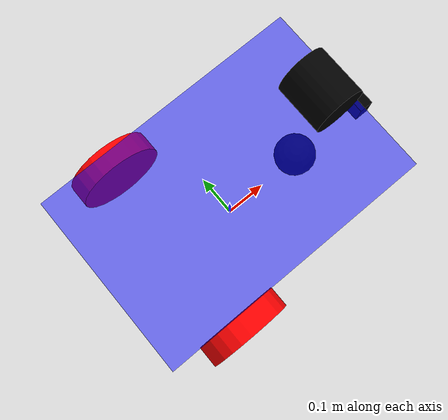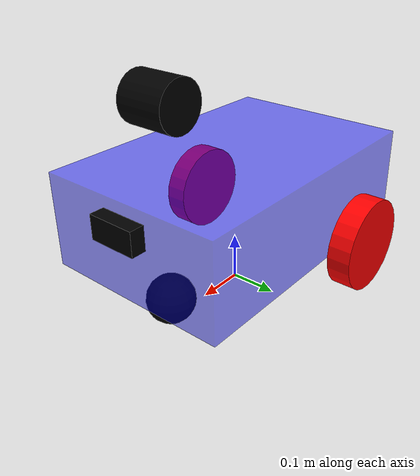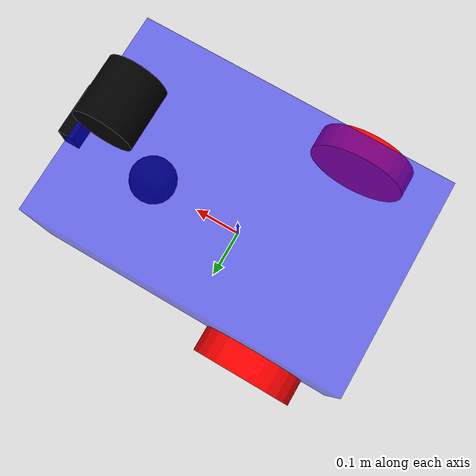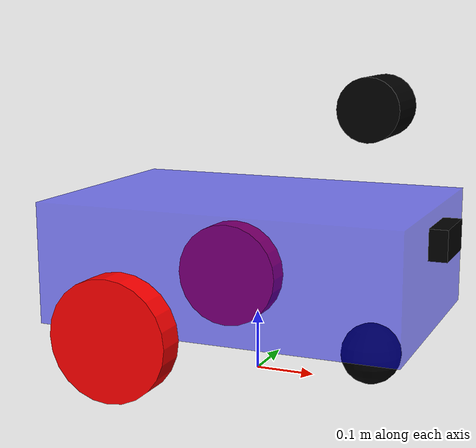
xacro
<?xml version="1.0"?>
<robot name="mobile_robot" xmlns:xacro="http://www.ros.org/wiki/xacro">

    <xacro:arg name="sim_mode" default="true"/>
    <xacro:arg name="use_ros2_control" default="true"/>

    <xacro:include filename="inertial_macros.xacro" />
    <xacro:include filename="robot_core.xacro" />
    <xacro:include filename="camera.xacro" />
    <xacro:include filename="lidar.xacro" />

    <xacro:if value="$(arg use_ros2_control)">
        <xacro:include filename="ros2_control.xacro" />
    </xacro:if>

    <xacro:unless value="$(arg use_ros2_control)">
        <xacro:include filename="gazebo_control.xacro" />
    </xacro:unless>

</robot>

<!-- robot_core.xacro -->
<robot xmlns:xacro="http://www.ros.org/wiki/xacro">

    <material name="blue">
        <color rgba="0 0 1 0.5"/>
    </material>

    <material name="red">
        <color rgba="1 0 0 1"/>
    </material>

    <material name="black">
        <color rgba="0 0 0 1"/>
    </material>

    <link name="base_footprint"/>

    <joint name="base_footprint_to_base_link_joint" type="fixed">
        <parent link="base_footprint"/>
        <child link="base_link"/>
        <origin xyz="0 0 0.1" rpy="0 0 0"/>
    </joint>

    <link name="base_link">
        <visual>
            <geometry>
                <box size="0.6 0.4 0.2"/>
            </geometry>
            <origin xyz="0 0 0.1" rpy="0 0 0"/>
            <material name="blue"/>
        </visual>
        <collision>
            <geometry>
                <box size="0.6 0.4 0.2"/>
            </geometry>
            <origin xyz="0 0 0.1" rpy="0 0 0"/>
        </collision>
        <inertial>
            <origin xyz="0 0 0.1" rpy="0 0 0"/>
            <mass value="2.0"/>
            <inertia ixx="0.033333" ixy="0.0" ixz="0.0"
                     iyy="0.066667" iyz="0.0"
                     izz="0.086667"/>
        </inertial>
    </link>

    <gazebo reference="base_link">
        <material>Gazebo/Blue</material>
    </gazebo>

    <joint name="base_right_wheel_joint" type="continuous">
        <parent link="base_link"/>
        <child link="right_wheel_link"/>
        <origin xyz="-0.15 -0.225 0" rpy="0 0 0"/>
        <axis xyz="0 1 0"/>

        <limit effort="1000.0" velocity="100.0"/>
        <dynamics damping="0.1" friction="0.1"/>
    </joint>

    <link name="right_wheel_link">
        <visual>
            <geometry>
                <cylinder radius="0.1" length="0.05"/>
            </geometry>
            <origin xyz="0 0 0" rpy="1.57 0 0"/>
            <material name="red"/>
        </visual>
        <collision>
            <geometry>
                <cylinder radius="0.1" length="0.05"/>
            </geometry>
            <origin xyz="0 0 0" rpy="1.57 0 0"/>
        </collision>
        <inertial>
            <origin xyz="0 0 0" rpy="1.57 0 0"/>
            <mass value="2.5"/>
            <inertia ixx="0.006771" ixy="0.0" ixz="0.0"
                     iyy="0.006771" iyz="0.0"
                     izz="0.012500"/>
        </inertial>
    </link>

    <gazebo reference="right_wheel_link">
        <material>Gazebo/Red</material>
    </gazebo>

    <joint name="base_left_wheel_joint" type="continuous">
        <parent link="base_link"/>
        <child link="left_wheel_link"/>
        <origin xyz="-0.15 0.225 0" rpy="0 0 0"/>
        <axis xyz="0 1 0"/>

        <limit effort="1000.0" velocity="100.0"/>
        <dynamics damping="0.1" friction="0.1"/>
    </joint>

    <link name="left_wheel_link">
        <visual>
            <geometry>
                <cylinder radius="0.1" length="0.05"/>
            </geometry>
            <origin xyz="0 0 0" rpy="1.57 0 0"/>
            <material name="red"/>
        </visual>
        <collision>
            <geometry>
                <cylinder radius="0.1" length="0.05"/>
            </geometry>
            <origin xyz="0 0 0" rpy="1.57 0 0"/>
        </collision>
        <inertial>
            <origin xyz="0 0 0" rpy="1.57 0 0"/>
            <mass value="2.5"/>
            <inertia ixx="0.006771" ixy="0.0" ixz="0.0"
                     iyy="0.006771" iyz="0.0"
                     izz="0.012500"/>
        </inertial>
    </link>

    <gazebo reference="left_wheel_link">
        <material>Gazebo/Red</material>
    </gazebo>

    <joint name="base_castor_wheel_joint" type="fixed">
        <parent link="base_link"/>
        <child link="castor_wheel_link"/>
        <origin xyz="0.2 0 -0.05" rpy="0 0 0"/>
    </joint>

    <link name="castor_wheel_link">
        <visual>
            <geometry>
                <sphere radius="0.05" />
            </geometry>
            <origin xyz="0 0 0" rpy="0 0 0"/>
            <material name="black"/>
        </visual>
        <collision>
            <geometry>
                <sphere radius="0.05" />
            </geometry>
            <origin xyz="0 0 0" rpy="0 0 0"/>
        </collision>
        <inertial>
            <mass value="1.0"/>
            <origin xyz="0 0 0" rpy="0 0 0"/>
            <inertia ixx="0.001000" ixy="0.0" ixz="0.0"
                     iyy="0.001000" iyz="0.0"
                     izz="0.001000"/>
        </inertial>
    </link>

    <gazebo reference="castor_wheel_link">
        <material>Gazebo/Black</material>
        <mu1>0.0</mu1>
        <mu2>0.0</mu2>
    </gazebo>

</robot>

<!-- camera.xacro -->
<robot xmlns:xacro="http://www.ros.org/wiki/xacro">

    <joint name="base_camera_joint" type="fixed">
        <parent link="base_link"/>
        <child link="camera_link"/>
        <origin xyz="0.315 0 0.15" rpy="0 0 0"/>
    </joint>

    <link name="camera_link">
        <visual>
            <geometry>
                <box size="0.03 0.1 0.05"/>
            </geometry>
            <origin xyz="0 0 0" rpy="0 0 0"/>
            <material name="black"/>
        </visual>
        <collision>
            <geometry>
                <box size="0.03 0.1 0.05"/>
            </geometry>
            <origin xyz="0 0 0" rpy="0 0 0"/>
        </collision>
        <inertial>
            <mass value="0.1"/>
            <origin xyz="0 0 0" rpy="0 0 0"/>
            <inertia ixx="0.000104" ixy="0.0" ixz="0.0"
                     iyy="0.000028" iyz="0.0"
                     izz="0.000091"/>
        </inertial>
    </link>

    <gazebo reference="camera_link">
        <sensor name="camera_sensor" type="camera">
            <camera>
                <horizontal_fov>1.047</horizontal_fov>
                <image>
                    <width>640</width>
                    <height>480</height>
                    <format>R8G8B8</format>
                </image>
                <clip>
                    <near>0.1</near>
                    <far>100</far>
                </clip>
                <noise>
                    <type>gaussian</type>
                    <mean>0.0</mean>
                    <stddev>0.007</stddev>
                </noise>
                <optical_frame_id>camera_link</optical_frame_id>
                <camera_info_topic>camera/camera_info</camera_info_topic>
            </camera>
            <always_on>1</always_on>
            <update_rate>30.0</update_rate>
            <visualize>true</visualize>
            <topic>camera/image_raw</topic>
        </sensor>
    </gazebo>

</robot>

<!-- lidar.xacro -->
<robot xmlns:xacro="http://www.ros.org/wiki/xacro">

    <joint name="base_scan_joint" type="fixed">
        <parent link="base_link"/>
        <child link="base_scan"/>
        <origin xyz="0.2 0 0.35" rpy="0 0 0"/>
    </joint>

    <link name="base_scan">
        <visual>
            <geometry>
                <cylinder radius="0.05" length="0.1"/>
            </geometry>
            <origin xyz="0 0 0" rpy="-1.5708 0 0"/>
            <material name="black"/>
        </visual>
        <collision>
            <geometry>
                <cylinder radius="0.05" length="0.1"/>
            </geometry>
            <origin xyz="0 0 0" rpy="-1.5708 0 0"/>
        </collision>
        <inertial>
            <mass value="0.1"/>
            <inertia ixx="0.000104" ixy="0.0" ixz="0.0"
                     iyy="0.000028" iyz="0.0"
                     izz="0.000091"/>
        </inertial>
    </link>

    <gazebo reference="base_scan">
        <sensor name="lidar" type="gpu_lidar">
            <update_rate>10</update_rate>
            <topic>/scan</topic>
            <gz_frame_id>base_scan</gz_frame_id>
            <lidar>
                <scan>
                    <horizontal>
                        <samples>720</samples>
                        <resolution>1</resolution>
                        <min_angle>-3.14156</min_angle>
                        <max_angle>3.14156</max_angle>
                    </horizontal>
                </scan>
                <range>
                    <min>0.05</min>
                    <max>10.0</max>
                    <resolution>0.01</resolution>
                </range>
                <noise>
                    <type>gaussian</type>
                    <mean>0.0</mean>
                    <stddev>0.01</stddev>
                </noise>
            </lidar>
            <always_on>1</always_on>
            <visualize>true</visualize>
        </sensor>
    </gazebo>
</robot>
